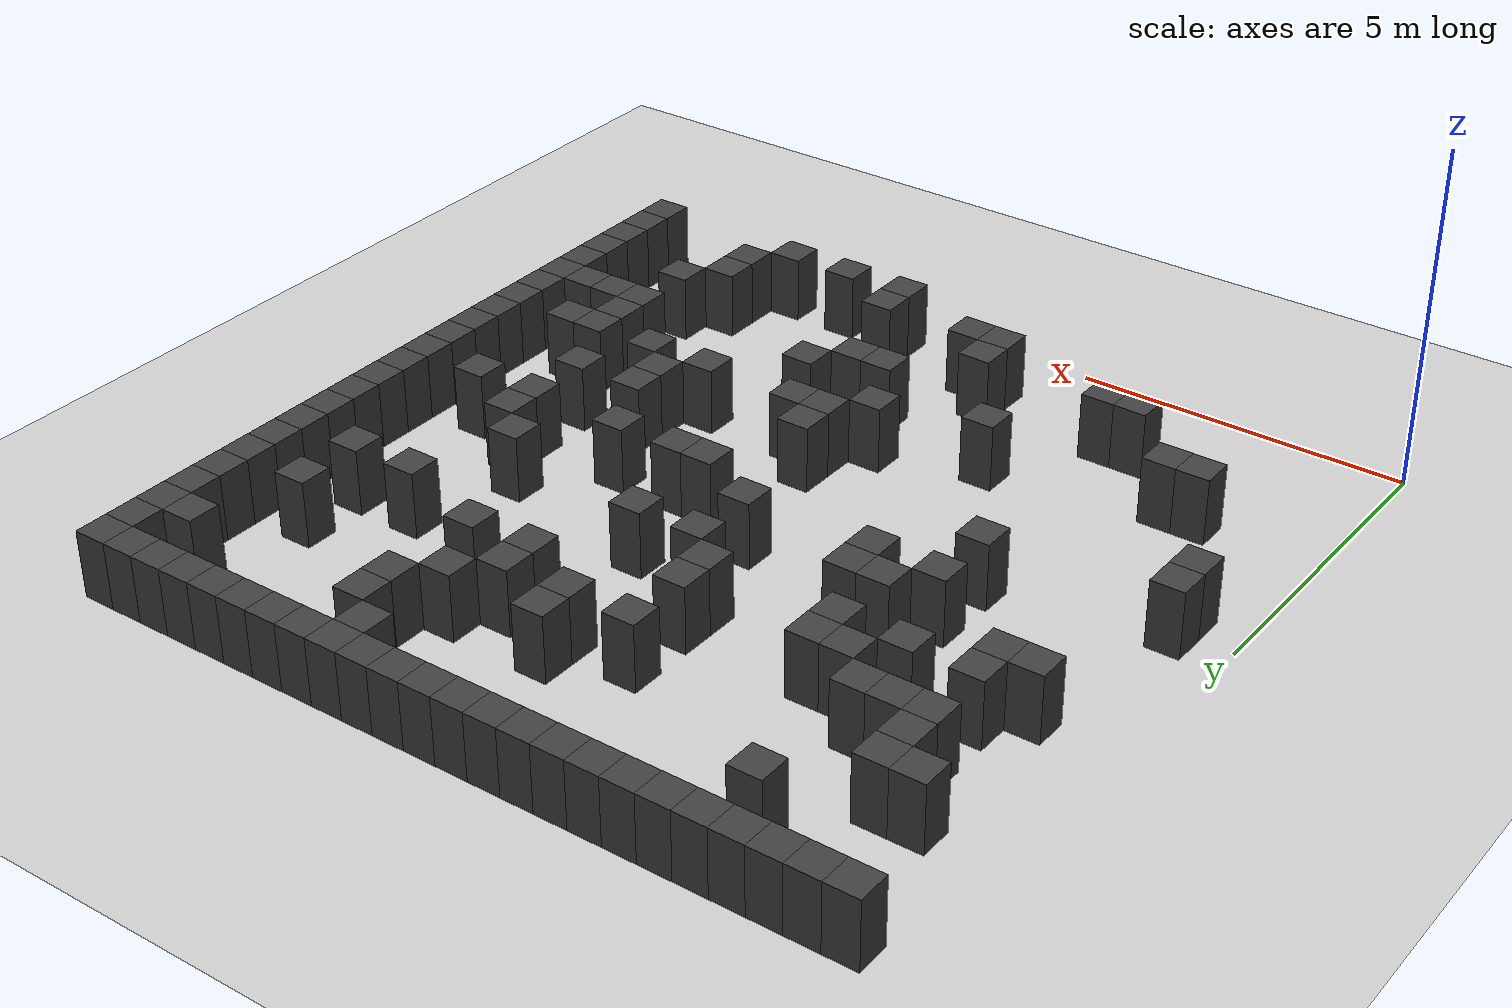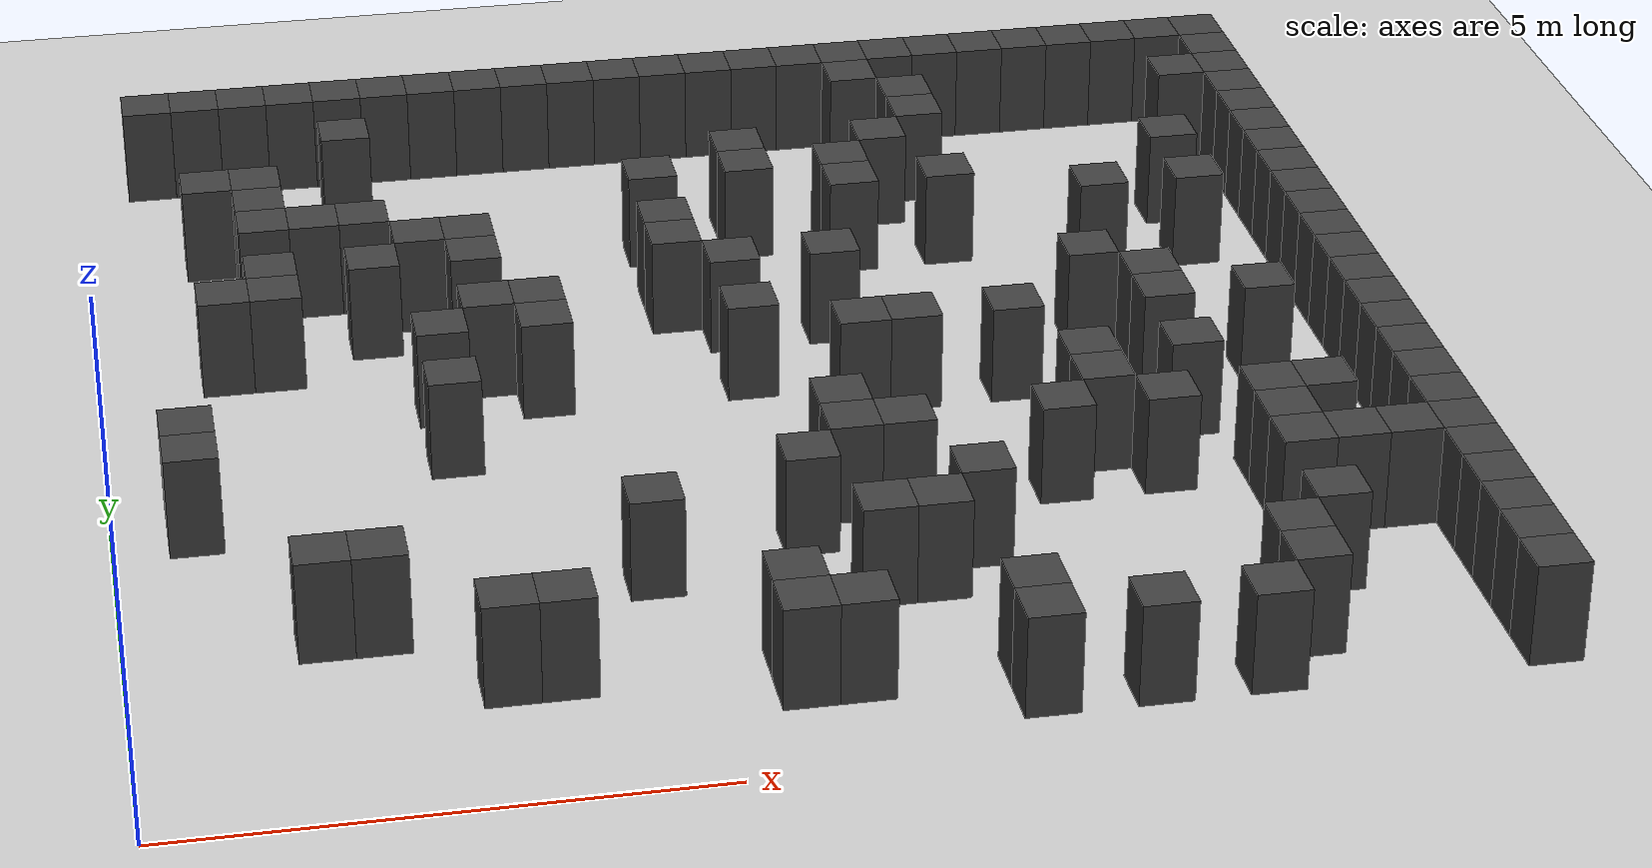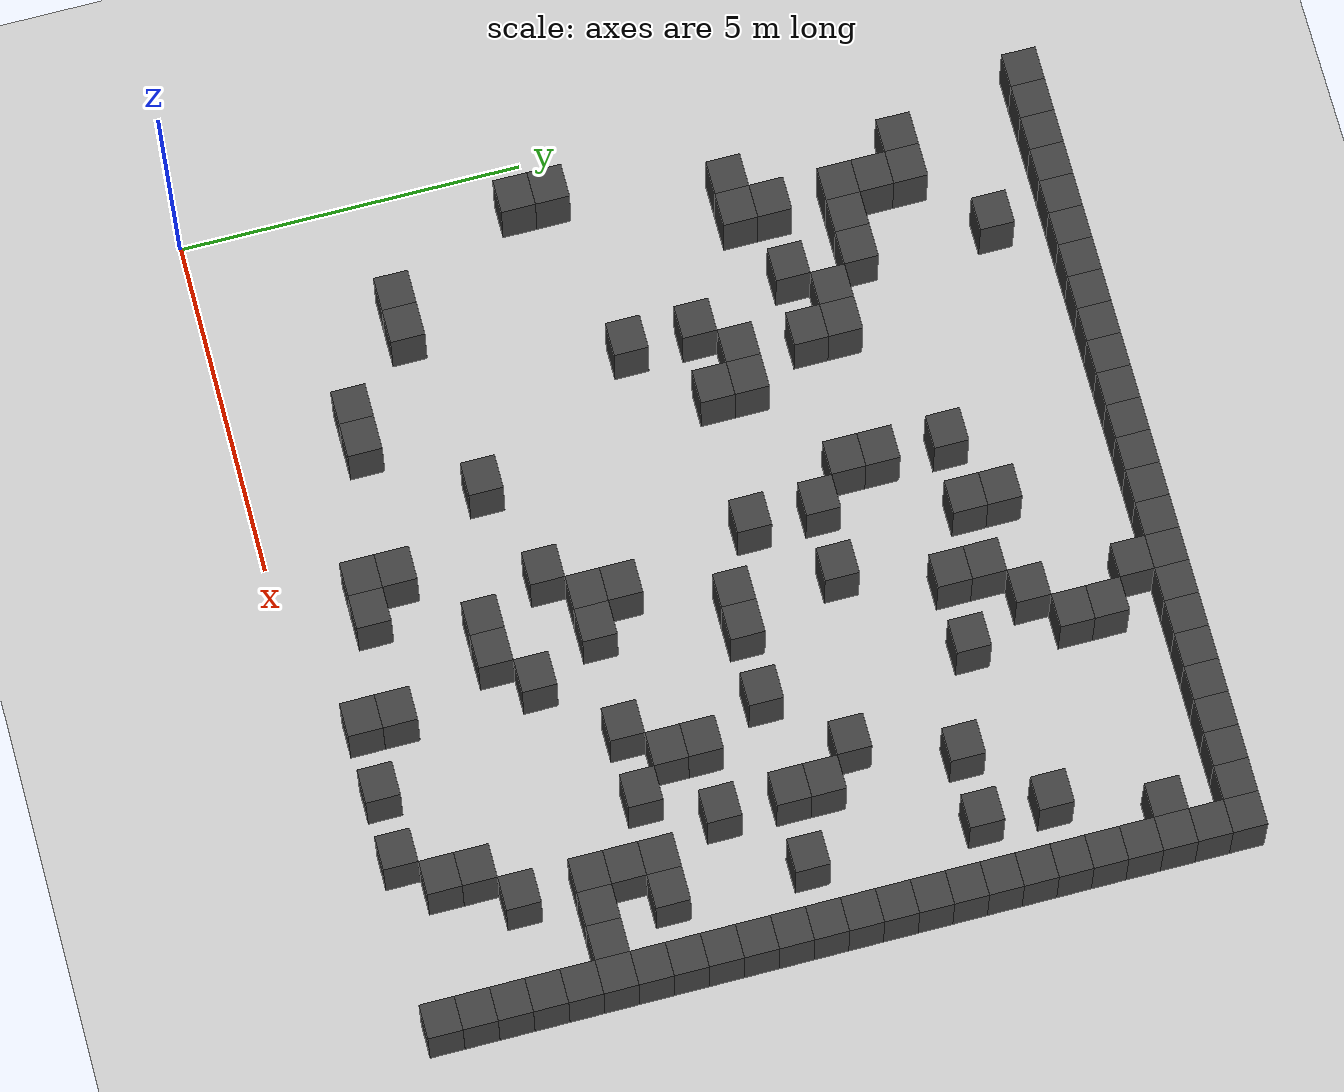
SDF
<sdf version="1.7">
 <world name="map_2627">
  <model name="ground_plane">
   <static>true</static>
   <link name="link">
    <collision name="collision">
     <geometry><plane><normal>0 0 1</normal><size>200 200</size></plane></geometry>
    </collision>
    <visual name="visual">
     <geometry><plane><normal>0 0 1</normal><size>200 200</size></plane></geometry>
     <material><ambient>0.8 0.8 0.8 1</ambient><diffuse>0.8 0.8 0.8 1</diffuse></material>
    </visual>
   </link>
  </model>
  <model name="maze_environment">
   <static>true</static>
   <link name="wall_26">
    <pose>0.750 12.250 0.500 0 0 0</pose>
    <collision name="col"><geometry><box><size>0.5 0.5 1.0</size></box></geometry></collision>
    <visual name="vis">
     <geometry><box><size>0.5 0.5 1.0</size></box></geometry>
     <material><ambient>0.15 0.15 0.15 1</ambient><diffuse>0.25 0.25 0.25 1</diffuse></material>
    </visual>
   </link>
   <link name="wall_27">
    <pose>1.250 12.250 0.500 0 0 0</pose>
    <collision name="col"><geometry><box><size>0.5 0.5 1.0</size></box></geometry></collision>
    <visual name="vis">
     <geometry><box><size>0.5 0.5 1.0</size></box></geometry>
     <material><ambient>0.15 0.15 0.15 1</ambient><diffuse>0.25 0.25 0.25 1</diffuse></material>
    </visual>
   </link>
   <link name="wall_28">
    <pose>1.750 12.250 0.500 0 0 0</pose>
    <collision name="col"><geometry><box><size>0.5 0.5 1.0</size></box></geometry></collision>
    <visual name="vis">
     <geometry><box><size>0.5 0.5 1.0</size></box></geometry>
     <material><ambient>0.15 0.15 0.15 1</ambient><diffuse>0.25 0.25 0.25 1</diffuse></material>
    </visual>
   </link>
   <link name="wall_29">
    <pose>2.250 12.250 0.500 0 0 0</pose>
    <collision name="col"><geometry><box><size>0.5 0.5 1.0</size></box></geometry></collision>
    <visual name="vis">
     <geometry><box><size>0.5 0.5 1.0</size></box></geometry>
     <material><ambient>0.15 0.15 0.15 1</ambient><diffuse>0.25 0.25 0.25 1</diffuse></material>
    </visual>
   </link>
   <link name="wall_30">
    <pose>2.750 12.250 0.500 0 0 0</pose>
    <collision name="col"><geometry><box><size>0.5 0.5 1.0</size></box></geometry></collision>
    <visual name="vis">
     <geometry><box><size>0.5 0.5 1.0</size></box></geometry>
     <material><ambient>0.15 0.15 0.15 1</ambient><diffuse>0.25 0.25 0.25 1</diffuse></material>
    </visual>
   </link>
   <link name="wall_31">
    <pose>3.250 12.250 0.500 0 0 0</pose>
    <collision name="col"><geometry><box><size>0.5 0.5 1.0</size></box></geometry></collision>
    <visual name="vis">
     <geometry><box><size>0.5 0.5 1.0</size></box></geometry>
     <material><ambient>0.15 0.15 0.15 1</ambient><diffuse>0.25 0.25 0.25 1</diffuse></material>
    </visual>
   </link>
   <link name="wall_32">
    <pose>3.750 12.250 0.500 0 0 0</pose>
    <collision name="col"><geometry><box><size>0.5 0.5 1.0</size></box></geometry></collision>
    <visual name="vis">
     <geometry><box><size>0.5 0.5 1.0</size></box></geometry>
     <material><ambient>0.15 0.15 0.15 1</ambient><diffuse>0.25 0.25 0.25 1</diffuse></material>
    </visual>
   </link>
   <link name="wall_33">
    <pose>4.250 12.250 0.500 0 0 0</pose>
    <collision name="col"><geometry><box><size>0.5 0.5 1.0</size></box></geometry></collision>
    <visual name="vis">
     <geometry><box><size>0.5 0.5 1.0</size></box></geometry>
     <material><ambient>0.15 0.15 0.15 1</ambient><diffuse>0.25 0.25 0.25 1</diffuse></material>
    </visual>
   </link>
   <link name="wall_34">
    <pose>4.750 12.250 0.500 0 0 0</pose>
    <collision name="col"><geometry><box><size>0.5 0.5 1.0</size></box></geometry></collision>
    <visual name="vis">
     <geometry><box><size>0.5 0.5 1.0</size></box></geometry>
     <material><ambient>0.15 0.15 0.15 1</ambient><diffuse>0.25 0.25 0.25 1</diffuse></material>
    </visual>
   </link>
   <link name="wall_35">
    <pose>5.250 12.250 0.500 0 0 0</pose>
    <collision name="col"><geometry><box><size>0.5 0.5 1.0</size></box></geometry></collision>
    <visual name="vis">
     <geometry><box><size>0.5 0.5 1.0</size></box></geometry>
     <material><ambient>0.15 0.15 0.15 1</ambient><diffuse>0.25 0.25 0.25 1</diffuse></material>
    </visual>
   </link>
   <link name="wall_36">
    <pose>5.750 12.250 0.500 0 0 0</pose>
    <collision name="col"><geometry><box><size>0.5 0.5 1.0</size></box></geometry></collision>
    <visual name="vis">
     <geometry><box><size>0.5 0.5 1.0</size></box></geometry>
     <material><ambient>0.15 0.15 0.15 1</ambient><diffuse>0.25 0.25 0.25 1</diffuse></material>
    </visual>
   </link>
   <link name="wall_37">
    <pose>6.250 12.250 0.500 0 0 0</pose>
    <collision name="col"><geometry><box><size>0.5 0.5 1.0</size></box></geometry></collision>
    <visual name="vis">
     <geometry><box><size>0.5 0.5 1.0</size></box></geometry>
     <material><ambient>0.15 0.15 0.15 1</ambient><diffuse>0.25 0.25 0.25 1</diffuse></material>
    </visual>
   </link>
   <link name="wall_38">
    <pose>6.750 12.250 0.500 0 0 0</pose>
    <collision name="col"><geometry><box><size>0.5 0.5 1.0</size></box></geometry></collision>
    <visual name="vis">
     <geometry><box><size>0.5 0.5 1.0</size></box></geometry>
     <material><ambient>0.15 0.15 0.15 1</ambient><diffuse>0.25 0.25 0.25 1</diffuse></material>
    </visual>
   </link>
   <link name="wall_39">
    <pose>7.250 12.250 0.500 0 0 0</pose>
    <collision name="col"><geometry><box><size>0.5 0.5 1.0</size></box></geometry></collision>
    <visual name="vis">
     <geometry><box><size>0.5 0.5 1.0</size></box></geometry>
     <material><ambient>0.15 0.15 0.15 1</ambient><diffuse>0.25 0.25 0.25 1</diffuse></material>
    </visual>
   </link>
   <link name="wall_40">
    <pose>7.750 12.250 0.500 0 0 0</pose>
    <collision name="col"><geometry><box><size>0.5 0.5 1.0</size></box></geometry></collision>
    <visual name="vis">
     <geometry><box><size>0.5 0.5 1.0</size></box></geometry>
     <material><ambient>0.15 0.15 0.15 1</ambient><diffuse>0.25 0.25 0.25 1</diffuse></material>
    </visual>
   </link>
   <link name="wall_41">
    <pose>8.250 12.250 0.500 0 0 0</pose>
    <collision name="col"><geometry><box><size>0.5 0.5 1.0</size></box></geometry></collision>
    <visual name="vis">
     <geometry><box><size>0.5 0.5 1.0</size></box></geometry>
     <material><ambient>0.15 0.15 0.15 1</ambient><diffuse>0.25 0.25 0.25 1</diffuse></material>
    </visual>
   </link>
   <link name="wall_42">
    <pose>8.750 12.250 0.500 0 0 0</pose>
    <collision name="col"><geometry><box><size>0.5 0.5 1.0</size></box></geometry></collision>
    <visual name="vis">
     <geometry><box><size>0.5 0.5 1.0</size></box></geometry>
     <material><ambient>0.15 0.15 0.15 1</ambient><diffuse>0.25 0.25 0.25 1</diffuse></material>
    </visual>
   </link>
   <link name="wall_43">
    <pose>9.250 12.250 0.500 0 0 0</pose>
    <collision name="col"><geometry><box><size>0.5 0.5 1.0</size></box></geometry></collision>
    <visual name="vis">
     <geometry><box><size>0.5 0.5 1.0</size></box></geometry>
     <material><ambient>0.15 0.15 0.15 1</ambient><diffuse>0.25 0.25 0.25 1</diffuse></material>
    </visual>
   </link>
   <link name="wall_44">
    <pose>9.750 12.250 0.500 0 0 0</pose>
    <collision name="col"><geometry><box><size>0.5 0.5 1.0</size></box></geometry></collision>
    <visual name="vis">
     <geometry><box><size>0.5 0.5 1.0</size></box></geometry>
     <material><ambient>0.15 0.15 0.15 1</ambient><diffuse>0.25 0.25 0.25 1</diffuse></material>
    </visual>
   </link>
   <link name="wall_45">
    <pose>10.250 12.250 0.500 0 0 0</pose>
    <collision name="col"><geometry><box><size>0.5 0.5 1.0</size></box></geometry></collision>
    <visual name="vis">
     <geometry><box><size>0.5 0.5 1.0</size></box></geometry>
     <material><ambient>0.15 0.15 0.15 1</ambient><diffuse>0.25 0.25 0.25 1</diffuse></material>
    </visual>
   </link>
   <link name="wall_46">
    <pose>10.750 12.250 0.500 0 0 0</pose>
    <collision name="col"><geometry><box><size>0.5 0.5 1.0</size></box></geometry></collision>
    <visual name="vis">
     <geometry><box><size>0.5 0.5 1.0</size></box></geometry>
     <material><ambient>0.15 0.15 0.15 1</ambient><diffuse>0.25 0.25 0.25 1</diffuse></material>
    </visual>
   </link>
   <link name="wall_47">
    <pose>11.250 12.250 0.500 0 0 0</pose>
    <collision name="col"><geometry><box><size>0.5 0.5 1.0</size></box></geometry></collision>
    <visual name="vis">
     <geometry><box><size>0.5 0.5 1.0</size></box></geometry>
     <material><ambient>0.15 0.15 0.15 1</ambient><diffuse>0.25 0.25 0.25 1</diffuse></material>
    </visual>
   </link>
   <link name="wall_48">
    <pose>11.750 12.250 0.500 0 0 0</pose>
    <collision name="col"><geometry><box><size>0.5 0.5 1.0</size></box></geometry></collision>
    <visual name="vis">
     <geometry><box><size>0.5 0.5 1.0</size></box></geometry>
     <material><ambient>0.15 0.15 0.15 1</ambient><diffuse>0.25 0.25 0.25 1</diffuse></material>
    </visual>
   </link>
   <link name="wall_49">
    <pose>12.250 12.250 0.500 0 0 0</pose>
    <collision name="col"><geometry><box><size>0.5 0.5 1.0</size></box></geometry></collision>
    <visual name="vis">
     <geometry><box><size>0.5 0.5 1.0</size></box></geometry>
     <material><ambient>0.15 0.15 0.15 1</ambient><diffuse>0.25 0.25 0.25 1</diffuse></material>
    </visual>
   </link>
   <link name="wall_52">
    <pose>8.250 11.750 0.500 0 0 0</pose>
    <collision name="col"><geometry><box><size>0.5 0.5 1.0</size></box></geometry></collision>
    <visual name="vis">
     <geometry><box><size>0.5 0.5 1.0</size></box></geometry>
     <material><ambient>0.15 0.15 0.15 1</ambient><diffuse>0.25 0.25 0.25 1</diffuse></material>
    </visual>
   </link>
   <link name="wall_53">
    <pose>12.250 11.750 0.500 0 0 0</pose>
    <collision name="col"><geometry><box><size>0.5 0.5 1.0</size></box></geometry></collision>
    <visual name="vis">
     <geometry><box><size>0.5 0.5 1.0</size></box></geometry>
     <material><ambient>0.15 0.15 0.15 1</ambient><diffuse>0.25 0.25 0.25 1</diffuse></material>
    </visual>
   </link>
   <link name="wall_58">
    <pose>2.750 11.250 0.500 0 0 0</pose>
    <collision name="col"><geometry><box><size>0.5 0.5 1.0</size></box></geometry></collision>
    <visual name="vis">
     <geometry><box><size>0.5 0.5 1.0</size></box></geometry>
     <material><ambient>0.15 0.15 0.15 1</ambient><diffuse>0.25 0.25 0.25 1</diffuse></material>
    </visual>
   </link>
   <link name="wall_59">
    <pose>8.750 11.250 0.500 0 0 0</pose>
    <collision name="col"><geometry><box><size>0.5 0.5 1.0</size></box></geometry></collision>
    <visual name="vis">
     <geometry><box><size>0.5 0.5 1.0</size></box></geometry>
     <material><ambient>0.15 0.15 0.15 1</ambient><diffuse>0.25 0.25 0.25 1</diffuse></material>
    </visual>
   </link>
   <link name="wall_60">
    <pose>11.750 11.250 0.500 0 0 0</pose>
    <collision name="col"><geometry><box><size>0.5 0.5 1.0</size></box></geometry></collision>
    <visual name="vis">
     <geometry><box><size>0.5 0.5 1.0</size></box></geometry>
     <material><ambient>0.15 0.15 0.15 1</ambient><diffuse>0.25 0.25 0.25 1</diffuse></material>
    </visual>
   </link>
   <link name="wall_61">
    <pose>12.250 11.250 0.500 0 0 0</pose>
    <collision name="col"><geometry><box><size>0.5 0.5 1.0</size></box></geometry></collision>
    <visual name="vis">
     <geometry><box><size>0.5 0.5 1.0</size></box></geometry>
     <material><ambient>0.15 0.15 0.15 1</ambient><diffuse>0.25 0.25 0.25 1</diffuse></material>
    </visual>
   </link>
   <link name="wall_66">
    <pose>8.750 10.750 0.500 0 0 0</pose>
    <collision name="col"><geometry><box><size>0.5 0.5 1.0</size></box></geometry></collision>
    <visual name="vis">
     <geometry><box><size>0.5 0.5 1.0</size></box></geometry>
     <material><ambient>0.15 0.15 0.15 1</ambient><diffuse>0.25 0.25 0.25 1</diffuse></material>
    </visual>
   </link>
   <link name="wall_67">
    <pose>12.250 10.750 0.500 0 0 0</pose>
    <collision name="col"><geometry><box><size>0.5 0.5 1.0</size></box></geometry></collision>
    <visual name="vis">
     <geometry><box><size>0.5 0.5 1.0</size></box></geometry>
     <material><ambient>0.15 0.15 0.15 1</ambient><diffuse>0.25 0.25 0.25 1</diffuse></material>
    </visual>
   </link>
   <link name="wall_72">
    <pose>1.250 10.250 0.500 0 0 0</pose>
    <collision name="col"><geometry><box><size>0.5 0.5 1.0</size></box></geometry></collision>
    <visual name="vis">
     <geometry><box><size>0.5 0.5 1.0</size></box></geometry>
     <material><ambient>0.15 0.15 0.15 1</ambient><diffuse>0.25 0.25 0.25 1</diffuse></material>
    </visual>
   </link>
   <link name="wall_73">
    <pose>1.750 10.250 0.500 0 0 0</pose>
    <collision name="col"><geometry><box><size>0.5 0.5 1.0</size></box></geometry></collision>
    <visual name="vis">
     <geometry><box><size>0.5 0.5 1.0</size></box></geometry>
     <material><ambient>0.15 0.15 0.15 1</ambient><diffuse>0.25 0.25 0.25 1</diffuse></material>
    </visual>
   </link>
   <link name="wall_74">
    <pose>6.750 10.250 0.500 0 0 0</pose>
    <collision name="col"><geometry><box><size>0.5 0.5 1.0</size></box></geometry></collision>
    <visual name="vis">
     <geometry><box><size>0.5 0.5 1.0</size></box></geometry>
     <material><ambient>0.15 0.15 0.15 1</ambient><diffuse>0.25 0.25 0.25 1</diffuse></material>
    </visual>
   </link>
   <link name="wall_75">
    <pose>8.250 10.250 0.500 0 0 0</pose>
    <collision name="col"><geometry><box><size>0.5 0.5 1.0</size></box></geometry></collision>
    <visual name="vis">
     <geometry><box><size>0.5 0.5 1.0</size></box></geometry>
     <material><ambient>0.15 0.15 0.15 1</ambient><diffuse>0.25 0.25 0.25 1</diffuse></material>
    </visual>
   </link>
   <link name="wall_76">
    <pose>12.250 10.250 0.500 0 0 0</pose>
    <collision name="col"><geometry><box><size>0.5 0.5 1.0</size></box></geometry></collision>
    <visual name="vis">
     <geometry><box><size>0.5 0.5 1.0</size></box></geometry>
     <material><ambient>0.15 0.15 0.15 1</ambient><diffuse>0.25 0.25 0.25 1</diffuse></material>
    </visual>
   </link>
   <link name="wall_80">
    <pose>1.750 9.750 0.500 0 0 0</pose>
    <collision name="col"><geometry><box><size>0.5 0.5 1.0</size></box></geometry></collision>
    <visual name="vis">
     <geometry><box><size>0.5 0.5 1.0</size></box></geometry>
     <material><ambient>0.15 0.15 0.15 1</ambient><diffuse>0.25 0.25 0.25 1</diffuse></material>
    </visual>
   </link>
   <link name="wall_81">
    <pose>5.750 9.750 0.500 0 0 0</pose>
    <collision name="col"><geometry><box><size>0.5 0.5 1.0</size></box></geometry></collision>
    <visual name="vis">
     <geometry><box><size>0.5 0.5 1.0</size></box></geometry>
     <material><ambient>0.15 0.15 0.15 1</ambient><diffuse>0.25 0.25 0.25 1</diffuse></material>
    </visual>
   </link>
   <link name="wall_82">
    <pose>6.750 9.750 0.500 0 0 0</pose>
    <collision name="col"><geometry><box><size>0.5 0.5 1.0</size></box></geometry></collision>
    <visual name="vis">
     <geometry><box><size>0.5 0.5 1.0</size></box></geometry>
     <material><ambient>0.15 0.15 0.15 1</ambient><diffuse>0.25 0.25 0.25 1</diffuse></material>
    </visual>
   </link>
   <link name="wall_83">
    <pose>7.750 9.750 0.500 0 0 0</pose>
    <collision name="col"><geometry><box><size>0.5 0.5 1.0</size></box></geometry></collision>
    <visual name="vis">
     <geometry><box><size>0.5 0.5 1.0</size></box></geometry>
     <material><ambient>0.15 0.15 0.15 1</ambient><diffuse>0.25 0.25 0.25 1</diffuse></material>
    </visual>
   </link>
   <link name="wall_84">
    <pose>11.250 9.750 0.500 0 0 0</pose>
    <collision name="col"><geometry><box><size>0.5 0.5 1.0</size></box></geometry></collision>
    <visual name="vis">
     <geometry><box><size>0.5 0.5 1.0</size></box></geometry>
     <material><ambient>0.15 0.15 0.15 1</ambient><diffuse>0.25 0.25 0.25 1</diffuse></material>
    </visual>
   </link>
   <link name="wall_85">
    <pose>12.250 9.750 0.500 0 0 0</pose>
    <collision name="col"><geometry><box><size>0.5 0.5 1.0</size></box></geometry></collision>
    <visual name="vis">
     <geometry><box><size>0.5 0.5 1.0</size></box></geometry>
     <material><ambient>0.15 0.15 0.15 1</ambient><diffuse>0.25 0.25 0.25 1</diffuse></material>
    </visual>
   </link>
   <link name="wall_91">
    <pose>1.750 9.250 0.500 0 0 0</pose>
    <collision name="col"><geometry><box><size>0.5 0.5 1.0</size></box></geometry></collision>
    <visual name="vis">
     <geometry><box><size>0.5 0.5 1.0</size></box></geometry>
     <material><ambient>0.15 0.15 0.15 1</ambient><diffuse>0.25 0.25 0.25 1</diffuse></material>
    </visual>
   </link>
   <link name="wall_92">
    <pose>2.250 9.250 0.500 0 0 0</pose>
    <collision name="col"><geometry><box><size>0.5 0.5 1.0</size></box></geometry></collision>
    <visual name="vis">
     <geometry><box><size>0.5 0.5 1.0</size></box></geometry>
     <material><ambient>0.15 0.15 0.15 1</ambient><diffuse>0.25 0.25 0.25 1</diffuse></material>
    </visual>
   </link>
   <link name="wall_93">
    <pose>2.750 9.250 0.500 0 0 0</pose>
    <collision name="col"><geometry><box><size>0.5 0.5 1.0</size></box></geometry></collision>
    <visual name="vis">
     <geometry><box><size>0.5 0.5 1.0</size></box></geometry>
     <material><ambient>0.15 0.15 0.15 1</ambient><diffuse>0.25 0.25 0.25 1</diffuse></material>
    </visual>
   </link>
   <link name="wall_94">
    <pose>7.750 9.250 0.500 0 0 0</pose>
    <collision name="col"><geometry><box><size>0.5 0.5 1.0</size></box></geometry></collision>
    <visual name="vis">
     <geometry><box><size>0.5 0.5 1.0</size></box></geometry>
     <material><ambient>0.15 0.15 0.15 1</ambient><diffuse>0.25 0.25 0.25 1</diffuse></material>
    </visual>
   </link>
   <link name="wall_95">
    <pose>8.750 9.250 0.500 0 0 0</pose>
    <collision name="col"><geometry><box><size>0.5 0.5 1.0</size></box></geometry></collision>
    <visual name="vis">
     <geometry><box><size>0.5 0.5 1.0</size></box></geometry>
     <material><ambient>0.15 0.15 0.15 1</ambient><diffuse>0.25 0.25 0.25 1</diffuse></material>
    </visual>
   </link>
   <link name="wall_96">
    <pose>12.250 9.250 0.500 0 0 0</pose>
    <collision name="col"><geometry><box><size>0.5 0.5 1.0</size></box></geometry></collision>
    <visual name="vis">
     <geometry><box><size>0.5 0.5 1.0</size></box></geometry>
     <material><ambient>0.15 0.15 0.15 1</ambient><diffuse>0.25 0.25 0.25 1</diffuse></material>
    </visual>
   </link>
   <link name="wall_99">
    <pose>3.250 8.750 0.500 0 0 0</pose>
    <collision name="col"><geometry><box><size>0.5 0.5 1.0</size></box></geometry></collision>
    <visual name="vis">
     <geometry><box><size>0.5 0.5 1.0</size></box></geometry>
     <material><ambient>0.15 0.15 0.15 1</ambient><diffuse>0.25 0.25 0.25 1</diffuse></material>
    </visual>
   </link>
   <link name="wall_100">
    <pose>3.750 8.750 0.500 0 0 0</pose>
    <collision name="col"><geometry><box><size>0.5 0.5 1.0</size></box></geometry></collision>
    <visual name="vis">
     <geometry><box><size>0.5 0.5 1.0</size></box></geometry>
     <material><ambient>0.15 0.15 0.15 1</ambient><diffuse>0.25 0.25 0.25 1</diffuse></material>
    </visual>
   </link>
   <link name="wall_101">
    <pose>5.750 8.750 0.500 0 0 0</pose>
    <collision name="col"><geometry><box><size>0.5 0.5 1.0</size></box></geometry></collision>
    <visual name="vis">
     <geometry><box><size>0.5 0.5 1.0</size></box></geometry>
     <material><ambient>0.15 0.15 0.15 1</ambient><diffuse>0.25 0.25 0.25 1</diffuse></material>
    </visual>
   </link>
   <link name="wall_102">
    <pose>10.250 8.750 0.500 0 0 0</pose>
    <collision name="col"><geometry><box><size>0.5 0.5 1.0</size></box></geometry></collision>
    <visual name="vis">
     <geometry><box><size>0.5 0.5 1.0</size></box></geometry>
     <material><ambient>0.15 0.15 0.15 1</ambient><diffuse>0.25 0.25 0.25 1</diffuse></material>
    </visual>
   </link>
   <link name="wall_103">
    <pose>11.250 8.750 0.500 0 0 0</pose>
    <collision name="col"><geometry><box><size>0.5 0.5 1.0</size></box></geometry></collision>
    <visual name="vis">
     <geometry><box><size>0.5 0.5 1.0</size></box></geometry>
     <material><ambient>0.15 0.15 0.15 1</ambient><diffuse>0.25 0.25 0.25 1</diffuse></material>
    </visual>
   </link>
   <link name="wall_104">
    <pose>12.250 8.750 0.500 0 0 0</pose>
    <collision name="col"><geometry><box><size>0.5 0.5 1.0</size></box></geometry></collision>
    <visual name="vis">
     <geometry><box><size>0.5 0.5 1.0</size></box></geometry>
     <material><ambient>0.15 0.15 0.15 1</ambient><diffuse>0.25 0.25 0.25 1</diffuse></material>
    </visual>
   </link>
   <link name="wall_110">
    <pose>1.750 8.250 0.500 0 0 0</pose>
    <collision name="col"><geometry><box><size>0.5 0.5 1.0</size></box></geometry></collision>
    <visual name="vis">
     <geometry><box><size>0.5 0.5 1.0</size></box></geometry>
     <material><ambient>0.15 0.15 0.15 1</ambient><diffuse>0.25 0.25 0.25 1</diffuse></material>
    </visual>
   </link>
   <link name="wall_111">
    <pose>2.750 8.250 0.500 0 0 0</pose>
    <collision name="col"><geometry><box><size>0.5 0.5 1.0</size></box></geometry></collision>
    <visual name="vis">
     <geometry><box><size>0.5 0.5 1.0</size></box></geometry>
     <material><ambient>0.15 0.15 0.15 1</ambient><diffuse>0.25 0.25 0.25 1</diffuse></material>
    </visual>
   </link>
   <link name="wall_112">
    <pose>3.750 8.250 0.500 0 0 0</pose>
    <collision name="col"><geometry><box><size>0.5 0.5 1.0</size></box></geometry></collision>
    <visual name="vis">
     <geometry><box><size>0.5 0.5 1.0</size></box></geometry>
     <material><ambient>0.15 0.15 0.15 1</ambient><diffuse>0.25 0.25 0.25 1</diffuse></material>
    </visual>
   </link>
   <link name="wall_113">
    <pose>5.750 8.250 0.500 0 0 0</pose>
    <collision name="col"><geometry><box><size>0.5 0.5 1.0</size></box></geometry></collision>
    <visual name="vis">
     <geometry><box><size>0.5 0.5 1.0</size></box></geometry>
     <material><ambient>0.15 0.15 0.15 1</ambient><diffuse>0.25 0.25 0.25 1</diffuse></material>
    </visual>
   </link>
   <link name="wall_114">
    <pose>12.250 8.250 0.500 0 0 0</pose>
    <collision name="col"><geometry><box><size>0.5 0.5 1.0</size></box></geometry></collision>
    <visual name="vis">
     <geometry><box><size>0.5 0.5 1.0</size></box></geometry>
     <material><ambient>0.15 0.15 0.15 1</ambient><diffuse>0.25 0.25 0.25 1</diffuse></material>
    </visual>
   </link>
   <link name="wall_121">
    <pose>1.250 7.750 0.500 0 0 0</pose>
    <collision name="col"><geometry><box><size>0.5 0.5 1.0</size></box></geometry></collision>
    <visual name="vis">
     <geometry><box><size>0.5 0.5 1.0</size></box></geometry>
     <material><ambient>0.15 0.15 0.15 1</ambient><diffuse>0.25 0.25 0.25 1</diffuse></material>
    </visual>
   </link>
   <link name="wall_122">
    <pose>1.750 7.750 0.500 0 0 0</pose>
    <collision name="col"><geometry><box><size>0.5 0.5 1.0</size></box></geometry></collision>
    <visual name="vis">
     <geometry><box><size>0.5 0.5 1.0</size></box></geometry>
     <material><ambient>0.15 0.15 0.15 1</ambient><diffuse>0.25 0.25 0.25 1</diffuse></material>
    </visual>
   </link>
   <link name="wall_123">
    <pose>6.250 7.750 0.500 0 0 0</pose>
    <collision name="col"><geometry><box><size>0.5 0.5 1.0</size></box></geometry></collision>
    <visual name="vis">
     <geometry><box><size>0.5 0.5 1.0</size></box></geometry>
     <material><ambient>0.15 0.15 0.15 1</ambient><diffuse>0.25 0.25 0.25 1</diffuse></material>
    </visual>
   </link>
   <link name="wall_124">
    <pose>7.250 7.750 0.500 0 0 0</pose>
    <collision name="col"><geometry><box><size>0.5 0.5 1.0</size></box></geometry></collision>
    <visual name="vis">
     <geometry><box><size>0.5 0.5 1.0</size></box></geometry>
     <material><ambient>0.15 0.15 0.15 1</ambient><diffuse>0.25 0.25 0.25 1</diffuse></material>
    </visual>
   </link>
   <link name="wall_125">
    <pose>12.250 7.750 0.500 0 0 0</pose>
    <collision name="col"><geometry><box><size>0.5 0.5 1.0</size></box></geometry></collision>
    <visual name="vis">
     <geometry><box><size>0.5 0.5 1.0</size></box></geometry>
     <material><ambient>0.15 0.15 0.15 1</ambient><diffuse>0.25 0.25 0.25 1</diffuse></material>
    </visual>
   </link>
   <link name="wall_129">
    <pose>3.750 7.250 0.500 0 0 0</pose>
    <collision name="col"><geometry><box><size>0.5 0.5 1.0</size></box></geometry></collision>
    <visual name="vis">
     <geometry><box><size>0.5 0.5 1.0</size></box></geometry>
     <material><ambient>0.15 0.15 0.15 1</ambient><diffuse>0.25 0.25 0.25 1</diffuse></material>
    </visual>
   </link>
   <link name="wall_130">
    <pose>4.250 7.250 0.500 0 0 0</pose>
    <collision name="col"><geometry><box><size>0.5 0.5 1.0</size></box></geometry></collision>
    <visual name="vis">
     <geometry><box><size>0.5 0.5 1.0</size></box></geometry>
     <material><ambient>0.15 0.15 0.15 1</ambient><diffuse>0.25 0.25 0.25 1</diffuse></material>
    </visual>
   </link>
   <link name="wall_131">
    <pose>9.750 7.250 0.500 0 0 0</pose>
    <collision name="col"><geometry><box><size>0.5 0.5 1.0</size></box></geometry></collision>
    <visual name="vis">
     <geometry><box><size>0.5 0.5 1.0</size></box></geometry>
     <material><ambient>0.15 0.15 0.15 1</ambient><diffuse>0.25 0.25 0.25 1</diffuse></material>
    </visual>
   </link>
   <link name="wall_132">
    <pose>12.250 7.250 0.500 0 0 0</pose>
    <collision name="col"><geometry><box><size>0.5 0.5 1.0</size></box></geometry></collision>
    <visual name="vis">
     <geometry><box><size>0.5 0.5 1.0</size></box></geometry>
     <material><ambient>0.15 0.15 0.15 1</ambient><diffuse>0.25 0.25 0.25 1</diffuse></material>
    </visual>
   </link>
   <link name="wall_138">
    <pose>3.250 6.750 0.500 0 0 0</pose>
    <collision name="col"><geometry><box><size>0.5 0.5 1.0</size></box></geometry></collision>
    <visual name="vis">
     <geometry><box><size>0.5 0.5 1.0</size></box></geometry>
     <material><ambient>0.15 0.15 0.15 1</ambient><diffuse>0.25 0.25 0.25 1</diffuse></material>
    </visual>
   </link>
   <link name="wall_139">
    <pose>4.250 6.750 0.500 0 0 0</pose>
    <collision name="col"><geometry><box><size>0.5 0.5 1.0</size></box></geometry></collision>
    <visual name="vis">
     <geometry><box><size>0.5 0.5 1.0</size></box></geometry>
     <material><ambient>0.15 0.15 0.15 1</ambient><diffuse>0.25 0.25 0.25 1</diffuse></material>
    </visual>
   </link>
   <link name="wall_140">
    <pose>6.250 6.750 0.500 0 0 0</pose>
    <collision name="col"><geometry><box><size>0.5 0.5 1.0</size></box></geometry></collision>
    <visual name="vis">
     <geometry><box><size>0.5 0.5 1.0</size></box></geometry>
     <material><ambient>0.15 0.15 0.15 1</ambient><diffuse>0.25 0.25 0.25 1</diffuse></material>
    </visual>
   </link>
   <link name="wall_141">
    <pose>10.250 6.750 0.500 0 0 0</pose>
    <collision name="col"><geometry><box><size>0.5 0.5 1.0</size></box></geometry></collision>
    <visual name="vis">
     <geometry><box><size>0.5 0.5 1.0</size></box></geometry>
     <material><ambient>0.15 0.15 0.15 1</ambient><diffuse>0.25 0.25 0.25 1</diffuse></material>
    </visual>
   </link>
   <link name="wall_142">
    <pose>12.250 6.750 0.500 0 0 0</pose>
    <collision name="col"><geometry><box><size>0.5 0.5 1.0</size></box></geometry></collision>
    <visual name="vis">
     <geometry><box><size>0.5 0.5 1.0</size></box></geometry>
     <material><ambient>0.15 0.15 0.15 1</ambient><diffuse>0.25 0.25 0.25 1</diffuse></material>
    </visual>
   </link>
   <link name="wall_147">
    <pose>7.250 6.250 0.500 0 0 0</pose>
    <collision name="col"><geometry><box><size>0.5 0.5 1.0</size></box></geometry></collision>
    <visual name="vis">
     <geometry><box><size>0.5 0.5 1.0</size></box></geometry>
     <material><ambient>0.15 0.15 0.15 1</ambient><diffuse>0.25 0.25 0.25 1</diffuse></material>
    </visual>
   </link>
   <link name="wall_148">
    <pose>7.750 6.250 0.500 0 0 0</pose>
    <collision name="col"><geometry><box><size>0.5 0.5 1.0</size></box></geometry></collision>
    <visual name="vis">
     <geometry><box><size>0.5 0.5 1.0</size></box></geometry>
     <material><ambient>0.15 0.15 0.15 1</ambient><diffuse>0.25 0.25 0.25 1</diffuse></material>
    </visual>
   </link>
   <link name="wall_149">
    <pose>8.750 6.250 0.500 0 0 0</pose>
    <collision name="col"><geometry><box><size>0.5 0.5 1.0</size></box></geometry></collision>
    <visual name="vis">
     <geometry><box><size>0.5 0.5 1.0</size></box></geometry>
     <material><ambient>0.15 0.15 0.15 1</ambient><diffuse>0.25 0.25 0.25 1</diffuse></material>
    </visual>
   </link>
   <link name="wall_150">
    <pose>10.250 6.250 0.500 0 0 0</pose>
    <collision name="col"><geometry><box><size>0.5 0.5 1.0</size></box></geometry></collision>
    <visual name="vis">
     <geometry><box><size>0.5 0.5 1.0</size></box></geometry>
     <material><ambient>0.15 0.15 0.15 1</ambient><diffuse>0.25 0.25 0.25 1</diffuse></material>
    </visual>
   </link>
   <link name="wall_151">
    <pose>11.250 6.250 0.500 0 0 0</pose>
    <collision name="col"><geometry><box><size>0.5 0.5 1.0</size></box></geometry></collision>
    <visual name="vis">
     <geometry><box><size>0.5 0.5 1.0</size></box></geometry>
     <material><ambient>0.15 0.15 0.15 1</ambient><diffuse>0.25 0.25 0.25 1</diffuse></material>
    </visual>
   </link>
   <link name="wall_152">
    <pose>12.250 6.250 0.500 0 0 0</pose>
    <collision name="col"><geometry><box><size>0.5 0.5 1.0</size></box></geometry></collision>
    <visual name="vis">
     <geometry><box><size>0.5 0.5 1.0</size></box></geometry>
     <material><ambient>0.15 0.15 0.15 1</ambient><diffuse>0.25 0.25 0.25 1</diffuse></material>
    </visual>
   </link>
   <link name="wall_158">
    <pose>3.250 5.750 0.500 0 0 0</pose>
    <collision name="col"><geometry><box><size>0.5 0.5 1.0</size></box></geometry></collision>
    <visual name="vis">
     <geometry><box><size>0.5 0.5 1.0</size></box></geometry>
     <material><ambient>0.15 0.15 0.15 1</ambient><diffuse>0.25 0.25 0.25 1</diffuse></material>
    </visual>
   </link>
   <link name="wall_159">
    <pose>12.250 5.750 0.500 0 0 0</pose>
    <collision name="col"><geometry><box><size>0.5 0.5 1.0</size></box></geometry></collision>
    <visual name="vis">
     <geometry><box><size>0.5 0.5 1.0</size></box></geometry>
     <material><ambient>0.15 0.15 0.15 1</ambient><diffuse>0.25 0.25 0.25 1</diffuse></material>
    </visual>
   </link>
   <link name="wall_163">
    <pose>0.750 5.250 0.500 0 0 0</pose>
    <collision name="col"><geometry><box><size>0.5 0.5 1.0</size></box></geometry></collision>
    <visual name="vis">
     <geometry><box><size>0.5 0.5 1.0</size></box></geometry>
     <material><ambient>0.15 0.15 0.15 1</ambient><diffuse>0.25 0.25 0.25 1</diffuse></material>
    </visual>
   </link>
   <link name="wall_164">
    <pose>9.250 5.250 0.500 0 0 0</pose>
    <collision name="col"><geometry><box><size>0.5 0.5 1.0</size></box></geometry></collision>
    <visual name="vis">
     <geometry><box><size>0.5 0.5 1.0</size></box></geometry>
     <material><ambient>0.15 0.15 0.15 1</ambient><diffuse>0.25 0.25 0.25 1</diffuse></material>
    </visual>
   </link>
   <link name="wall_165">
    <pose>10.250 5.250 0.500 0 0 0</pose>
    <collision name="col"><geometry><box><size>0.5 0.5 1.0</size></box></geometry></collision>
    <visual name="vis">
     <geometry><box><size>0.5 0.5 1.0</size></box></geometry>
     <material><ambient>0.15 0.15 0.15 1</ambient><diffuse>0.25 0.25 0.25 1</diffuse></material>
    </visual>
   </link>
   <link name="wall_166">
    <pose>12.250 5.250 0.500 0 0 0</pose>
    <collision name="col"><geometry><box><size>0.5 0.5 1.0</size></box></geometry></collision>
    <visual name="vis">
     <geometry><box><size>0.5 0.5 1.0</size></box></geometry>
     <material><ambient>0.15 0.15 0.15 1</ambient><diffuse>0.25 0.25 0.25 1</diffuse></material>
    </visual>
   </link>
   <link name="wall_174">
    <pose>0.750 4.750 0.500 0 0 0</pose>
    <collision name="col"><geometry><box><size>0.5 0.5 1.0</size></box></geometry></collision>
    <visual name="vis">
     <geometry><box><size>0.5 0.5 1.0</size></box></geometry>
     <material><ambient>0.15 0.15 0.15 1</ambient><diffuse>0.25 0.25 0.25 1</diffuse></material>
    </visual>
   </link>
   <link name="wall_175">
    <pose>6.750 4.750 0.500 0 0 0</pose>
    <collision name="col"><geometry><box><size>0.5 0.5 1.0</size></box></geometry></collision>
    <visual name="vis">
     <geometry><box><size>0.5 0.5 1.0</size></box></geometry>
     <material><ambient>0.15 0.15 0.15 1</ambient><diffuse>0.25 0.25 0.25 1</diffuse></material>
    </visual>
   </link>
   <link name="wall_176">
    <pose>9.250 4.750 0.500 0 0 0</pose>
    <collision name="col"><geometry><box><size>0.5 0.5 1.0</size></box></geometry></collision>
    <visual name="vis">
     <geometry><box><size>0.5 0.5 1.0</size></box></geometry>
     <material><ambient>0.15 0.15 0.15 1</ambient><diffuse>0.25 0.25 0.25 1</diffuse></material>
    </visual>
   </link>
   <link name="wall_177">
    <pose>12.250 4.750 0.500 0 0 0</pose>
    <collision name="col"><geometry><box><size>0.5 0.5 1.0</size></box></geometry></collision>
    <visual name="vis">
     <geometry><box><size>0.5 0.5 1.0</size></box></geometry>
     <material><ambient>0.15 0.15 0.15 1</ambient><diffuse>0.25 0.25 0.25 1</diffuse></material>
    </visual>
   </link>
   <link name="wall_181">
    <pose>6.750 4.250 0.500 0 0 0</pose>
    <collision name="col"><geometry><box><size>0.5 0.5 1.0</size></box></geometry></collision>
    <visual name="vis">
     <geometry><box><size>0.5 0.5 1.0</size></box></geometry>
     <material><ambient>0.15 0.15 0.15 1</ambient><diffuse>0.25 0.25 0.25 1</diffuse></material>
    </visual>
   </link>
   <link name="wall_182">
    <pose>7.250 4.250 0.500 0 0 0</pose>
    <collision name="col"><geometry><box><size>0.5 0.5 1.0</size></box></geometry></collision>
    <visual name="vis">
     <geometry><box><size>0.5 0.5 1.0</size></box></geometry>
     <material><ambient>0.15 0.15 0.15 1</ambient><diffuse>0.25 0.25 0.25 1</diffuse></material>
    </visual>
   </link>
   <link name="wall_183">
    <pose>8.750 4.250 0.500 0 0 0</pose>
    <collision name="col"><geometry><box><size>0.5 0.5 1.0</size></box></geometry></collision>
    <visual name="vis">
     <geometry><box><size>0.5 0.5 1.0</size></box></geometry>
     <material><ambient>0.15 0.15 0.15 1</ambient><diffuse>0.25 0.25 0.25 1</diffuse></material>
    </visual>
   </link>
   <link name="wall_184">
    <pose>9.750 4.250 0.500 0 0 0</pose>
    <collision name="col"><geometry><box><size>0.5 0.5 1.0</size></box></geometry></collision>
    <visual name="vis">
     <geometry><box><size>0.5 0.5 1.0</size></box></geometry>
     <material><ambient>0.15 0.15 0.15 1</ambient><diffuse>0.25 0.25 0.25 1</diffuse></material>
    </visual>
   </link>
   <link name="wall_185">
    <pose>10.750 4.250 0.500 0 0 0</pose>
    <collision name="col"><geometry><box><size>0.5 0.5 1.0</size></box></geometry></collision>
    <visual name="vis">
     <geometry><box><size>0.5 0.5 1.0</size></box></geometry>
     <material><ambient>0.15 0.15 0.15 1</ambient><diffuse>0.25 0.25 0.25 1</diffuse></material>
    </visual>
   </link>
   <link name="wall_186">
    <pose>11.250 4.250 0.500 0 0 0</pose>
    <collision name="col"><geometry><box><size>0.5 0.5 1.0</size></box></geometry></collision>
    <visual name="vis">
     <geometry><box><size>0.5 0.5 1.0</size></box></geometry>
     <material><ambient>0.15 0.15 0.15 1</ambient><diffuse>0.25 0.25 0.25 1</diffuse></material>
    </visual>
   </link>
   <link name="wall_187">
    <pose>12.250 4.250 0.500 0 0 0</pose>
    <collision name="col"><geometry><box><size>0.5 0.5 1.0</size></box></geometry></collision>
    <visual name="vis">
     <geometry><box><size>0.5 0.5 1.0</size></box></geometry>
     <material><ambient>0.15 0.15 0.15 1</ambient><diffuse>0.25 0.25 0.25 1</diffuse></material>
    </visual>
   </link>
   <link name="wall_192">
    <pose>6.250 3.750 0.500 0 0 0</pose>
    <collision name="col"><geometry><box><size>0.5 0.5 1.0</size></box></geometry></collision>
    <visual name="vis">
     <geometry><box><size>0.5 0.5 1.0</size></box></geometry>
     <material><ambient>0.15 0.15 0.15 1</ambient><diffuse>0.25 0.25 0.25 1</diffuse></material>
    </visual>
   </link>
   <link name="wall_193">
    <pose>10.750 3.750 0.500 0 0 0</pose>
    <collision name="col"><geometry><box><size>0.5 0.5 1.0</size></box></geometry></collision>
    <visual name="vis">
     <geometry><box><size>0.5 0.5 1.0</size></box></geometry>
     <material><ambient>0.15 0.15 0.15 1</ambient><diffuse>0.25 0.25 0.25 1</diffuse></material>
    </visual>
   </link>
   <link name="wall_194">
    <pose>12.250 3.750 0.500 0 0 0</pose>
    <collision name="col"><geometry><box><size>0.5 0.5 1.0</size></box></geometry></collision>
    <visual name="vis">
     <geometry><box><size>0.5 0.5 1.0</size></box></geometry>
     <material><ambient>0.15 0.15 0.15 1</ambient><diffuse>0.25 0.25 0.25 1</diffuse></material>
    </visual>
   </link>
   <link name="wall_199">
    <pose>4.750 3.250 0.500 0 0 0</pose>
    <collision name="col"><geometry><box><size>0.5 0.5 1.0</size></box></geometry></collision>
    <visual name="vis">
     <geometry><box><size>0.5 0.5 1.0</size></box></geometry>
     <material><ambient>0.15 0.15 0.15 1</ambient><diffuse>0.25 0.25 0.25 1</diffuse></material>
    </visual>
   </link>
   <link name="wall_200">
    <pose>7.750 3.250 0.500 0 0 0</pose>
    <collision name="col"><geometry><box><size>0.5 0.5 1.0</size></box></geometry></collision>
    <visual name="vis">
     <geometry><box><size>0.5 0.5 1.0</size></box></geometry>
     <material><ambient>0.15 0.15 0.15 1</ambient><diffuse>0.25 0.25 0.25 1</diffuse></material>
    </visual>
   </link>
   <link name="wall_201">
    <pose>10.750 3.250 0.500 0 0 0</pose>
    <collision name="col"><geometry><box><size>0.5 0.5 1.0</size></box></geometry></collision>
    <visual name="vis">
     <geometry><box><size>0.5 0.5 1.0</size></box></geometry>
     <material><ambient>0.15 0.15 0.15 1</ambient><diffuse>0.25 0.25 0.25 1</diffuse></material>
    </visual>
   </link>
   <link name="wall_202">
    <pose>11.250 3.250 0.500 0 0 0</pose>
    <collision name="col"><geometry><box><size>0.5 0.5 1.0</size></box></geometry></collision>
    <visual name="vis">
     <geometry><box><size>0.5 0.5 1.0</size></box></geometry>
     <material><ambient>0.15 0.15 0.15 1</ambient><diffuse>0.25 0.25 0.25 1</diffuse></material>
    </visual>
   </link>
   <link name="wall_203">
    <pose>11.750 3.250 0.500 0 0 0</pose>
    <collision name="col"><geometry><box><size>0.5 0.5 1.0</size></box></geometry></collision>
    <visual name="vis">
     <geometry><box><size>0.5 0.5 1.0</size></box></geometry>
     <material><ambient>0.15 0.15 0.15 1</ambient><diffuse>0.25 0.25 0.25 1</diffuse></material>
    </visual>
   </link>
   <link name="wall_204">
    <pose>12.250 3.250 0.500 0 0 0</pose>
    <collision name="col"><geometry><box><size>0.5 0.5 1.0</size></box></geometry></collision>
    <visual name="vis">
     <geometry><box><size>0.5 0.5 1.0</size></box></geometry>
     <material><ambient>0.15 0.15 0.15 1</ambient><diffuse>0.25 0.25 0.25 1</diffuse></material>
    </visual>
   </link>
   <link name="wall_212">
    <pose>1.750 2.750 0.500 0 0 0</pose>
    <collision name="col"><geometry><box><size>0.5 0.5 1.0</size></box></geometry></collision>
    <visual name="vis">
     <geometry><box><size>0.5 0.5 1.0</size></box></geometry>
     <material><ambient>0.15 0.15 0.15 1</ambient><diffuse>0.25 0.25 0.25 1</diffuse></material>
    </visual>
   </link>
   <link name="wall_213">
    <pose>2.250 2.750 0.500 0 0 0</pose>
    <collision name="col"><geometry><box><size>0.5 0.5 1.0</size></box></geometry></collision>
    <visual name="vis">
     <geometry><box><size>0.5 0.5 1.0</size></box></geometry>
     <material><ambient>0.15 0.15 0.15 1</ambient><diffuse>0.25 0.25 0.25 1</diffuse></material>
    </visual>
   </link>
   <link name="wall_214">
    <pose>6.750 2.750 0.500 0 0 0</pose>
    <collision name="col"><geometry><box><size>0.5 0.5 1.0</size></box></geometry></collision>
    <visual name="vis">
     <geometry><box><size>0.5 0.5 1.0</size></box></geometry>
     <material><ambient>0.15 0.15 0.15 1</ambient><diffuse>0.25 0.25 0.25 1</diffuse></material>
    </visual>
   </link>
   <link name="wall_215">
    <pose>7.250 2.750 0.500 0 0 0</pose>
    <collision name="col"><geometry><box><size>0.5 0.5 1.0</size></box></geometry></collision>
    <visual name="vis">
     <geometry><box><size>0.5 0.5 1.0</size></box></geometry>
     <material><ambient>0.15 0.15 0.15 1</ambient><diffuse>0.25 0.25 0.25 1</diffuse></material>
    </visual>
   </link>
   <link name="wall_216">
    <pose>12.250 2.750 0.500 0 0 0</pose>
    <collision name="col"><geometry><box><size>0.5 0.5 1.0</size></box></geometry></collision>
    <visual name="vis">
     <geometry><box><size>0.5 0.5 1.0</size></box></geometry>
     <material><ambient>0.15 0.15 0.15 1</ambient><diffuse>0.25 0.25 0.25 1</diffuse></material>
    </visual>
   </link>
   <link name="wall_220">
    <pose>10.750 2.250 0.500 0 0 0</pose>
    <collision name="col"><geometry><box><size>0.5 0.5 1.0</size></box></geometry></collision>
    <visual name="vis">
     <geometry><box><size>0.5 0.5 1.0</size></box></geometry>
     <material><ambient>0.15 0.15 0.15 1</ambient><diffuse>0.25 0.25 0.25 1</diffuse></material>
    </visual>
   </link>
   <link name="wall_221">
    <pose>12.250 2.250 0.500 0 0 0</pose>
    <collision name="col"><geometry><box><size>0.5 0.5 1.0</size></box></geometry></collision>
    <visual name="vis">
     <geometry><box><size>0.5 0.5 1.0</size></box></geometry>
     <material><ambient>0.15 0.15 0.15 1</ambient><diffuse>0.25 0.25 0.25 1</diffuse></material>
    </visual>
   </link>
   <link name="wall_229">
    <pose>3.250 1.750 0.500 0 0 0</pose>
    <collision name="col"><geometry><box><size>0.5 0.5 1.0</size></box></geometry></collision>
    <visual name="vis">
     <geometry><box><size>0.5 0.5 1.0</size></box></geometry>
     <material><ambient>0.15 0.15 0.15 1</ambient><diffuse>0.25 0.25 0.25 1</diffuse></material>
    </visual>
   </link>
   <link name="wall_230">
    <pose>3.750 1.750 0.500 0 0 0</pose>
    <collision name="col"><geometry><box><size>0.5 0.5 1.0</size></box></geometry></collision>
    <visual name="vis">
     <geometry><box><size>0.5 0.5 1.0</size></box></geometry>
     <material><ambient>0.15 0.15 0.15 1</ambient><diffuse>0.25 0.25 0.25 1</diffuse></material>
    </visual>
   </link>
   <link name="wall_231">
    <pose>5.750 1.750 0.500 0 0 0</pose>
    <collision name="col"><geometry><box><size>0.5 0.5 1.0</size></box></geometry></collision>
    <visual name="vis">
     <geometry><box><size>0.5 0.5 1.0</size></box></geometry>
     <material><ambient>0.15 0.15 0.15 1</ambient><diffuse>0.25 0.25 0.25 1</diffuse></material>
    </visual>
   </link>
   <link name="wall_232">
    <pose>10.250 1.750 0.500 0 0 0</pose>
    <collision name="col"><geometry><box><size>0.5 0.5 1.0</size></box></geometry></collision>
    <visual name="vis">
     <geometry><box><size>0.5 0.5 1.0</size></box></geometry>
     <material><ambient>0.15 0.15 0.15 1</ambient><diffuse>0.25 0.25 0.25 1</diffuse></material>
    </visual>
   </link>
   <link name="wall_233">
    <pose>12.250 1.750 0.500 0 0 0</pose>
    <collision name="col"><geometry><box><size>0.5 0.5 1.0</size></box></geometry></collision>
    <visual name="vis">
     <geometry><box><size>0.5 0.5 1.0</size></box></geometry>
     <material><ambient>0.15 0.15 0.15 1</ambient><diffuse>0.25 0.25 0.25 1</diffuse></material>
    </visual>
   </link>
   <link name="wall_240">
    <pose>5.750 1.250 0.500 0 0 0</pose>
    <collision name="col"><geometry><box><size>0.5 0.5 1.0</size></box></geometry></collision>
    <visual name="vis">
     <geometry><box><size>0.5 0.5 1.0</size></box></geometry>
     <material><ambient>0.15 0.15 0.15 1</ambient><diffuse>0.25 0.25 0.25 1</diffuse></material>
    </visual>
   </link>
   <link name="wall_241">
    <pose>6.250 1.250 0.500 0 0 0</pose>
    <collision name="col"><geometry><box><size>0.5 0.5 1.0</size></box></geometry></collision>
    <visual name="vis">
     <geometry><box><size>0.5 0.5 1.0</size></box></geometry>
     <material><ambient>0.15 0.15 0.15 1</ambient><diffuse>0.25 0.25 0.25 1</diffuse></material>
    </visual>
   </link>
   <link name="wall_242">
    <pose>7.750 1.250 0.500 0 0 0</pose>
    <collision name="col"><geometry><box><size>0.5 0.5 1.0</size></box></geometry></collision>
    <visual name="vis">
     <geometry><box><size>0.5 0.5 1.0</size></box></geometry>
     <material><ambient>0.15 0.15 0.15 1</ambient><diffuse>0.25 0.25 0.25 1</diffuse></material>
    </visual>
   </link>
   <link name="wall_243">
    <pose>10.250 1.250 0.500 0 0 0</pose>
    <collision name="col"><geometry><box><size>0.5 0.5 1.0</size></box></geometry></collision>
    <visual name="vis">
     <geometry><box><size>0.5 0.5 1.0</size></box></geometry>
     <material><ambient>0.15 0.15 0.15 1</ambient><diffuse>0.25 0.25 0.25 1</diffuse></material>
    </visual>
   </link>
   <link name="wall_244">
    <pose>12.250 1.250 0.500 0 0 0</pose>
    <collision name="col"><geometry><box><size>0.5 0.5 1.0</size></box></geometry></collision>
    <visual name="vis">
     <geometry><box><size>0.5 0.5 1.0</size></box></geometry>
     <material><ambient>0.15 0.15 0.15 1</ambient><diffuse>0.25 0.25 0.25 1</diffuse></material>
    </visual>
   </link>
   <link name="wall_254">
    <pose>7.750 0.750 0.500 0 0 0</pose>
    <collision name="col"><geometry><box><size>0.5 0.5 1.0</size></box></geometry></collision>
    <visual name="vis">
     <geometry><box><size>0.5 0.5 1.0</size></box></geometry>
     <material><ambient>0.15 0.15 0.15 1</ambient><diffuse>0.25 0.25 0.25 1</diffuse></material>
    </visual>
   </link>
   <link name="wall_255">
    <pose>8.750 0.750 0.500 0 0 0</pose>
    <collision name="col"><geometry><box><size>0.5 0.5 1.0</size></box></geometry></collision>
    <visual name="vis">
     <geometry><box><size>0.5 0.5 1.0</size></box></geometry>
     <material><ambient>0.15 0.15 0.15 1</ambient><diffuse>0.25 0.25 0.25 1</diffuse></material>
    </visual>
   </link>
   <link name="wall_256">
    <pose>9.750 0.750 0.500 0 0 0</pose>
    <collision name="col"><geometry><box><size>0.5 0.5 1.0</size></box></geometry></collision>
    <visual name="vis">
     <geometry><box><size>0.5 0.5 1.0</size></box></geometry>
     <material><ambient>0.15 0.15 0.15 1</ambient><diffuse>0.25 0.25 0.25 1</diffuse></material>
    </visual>
   </link>
   <link name="wall_257">
    <pose>12.250 0.750 0.500 0 0 0</pose>
    <collision name="col"><geometry><box><size>0.5 0.5 1.0</size></box></geometry></collision>
    <visual name="vis">
     <geometry><box><size>0.5 0.5 1.0</size></box></geometry>
     <material><ambient>0.15 0.15 0.15 1</ambient><diffuse>0.25 0.25 0.25 1</diffuse></material>
    </visual>
   </link>
  </model>
 </world>
</sdf>
